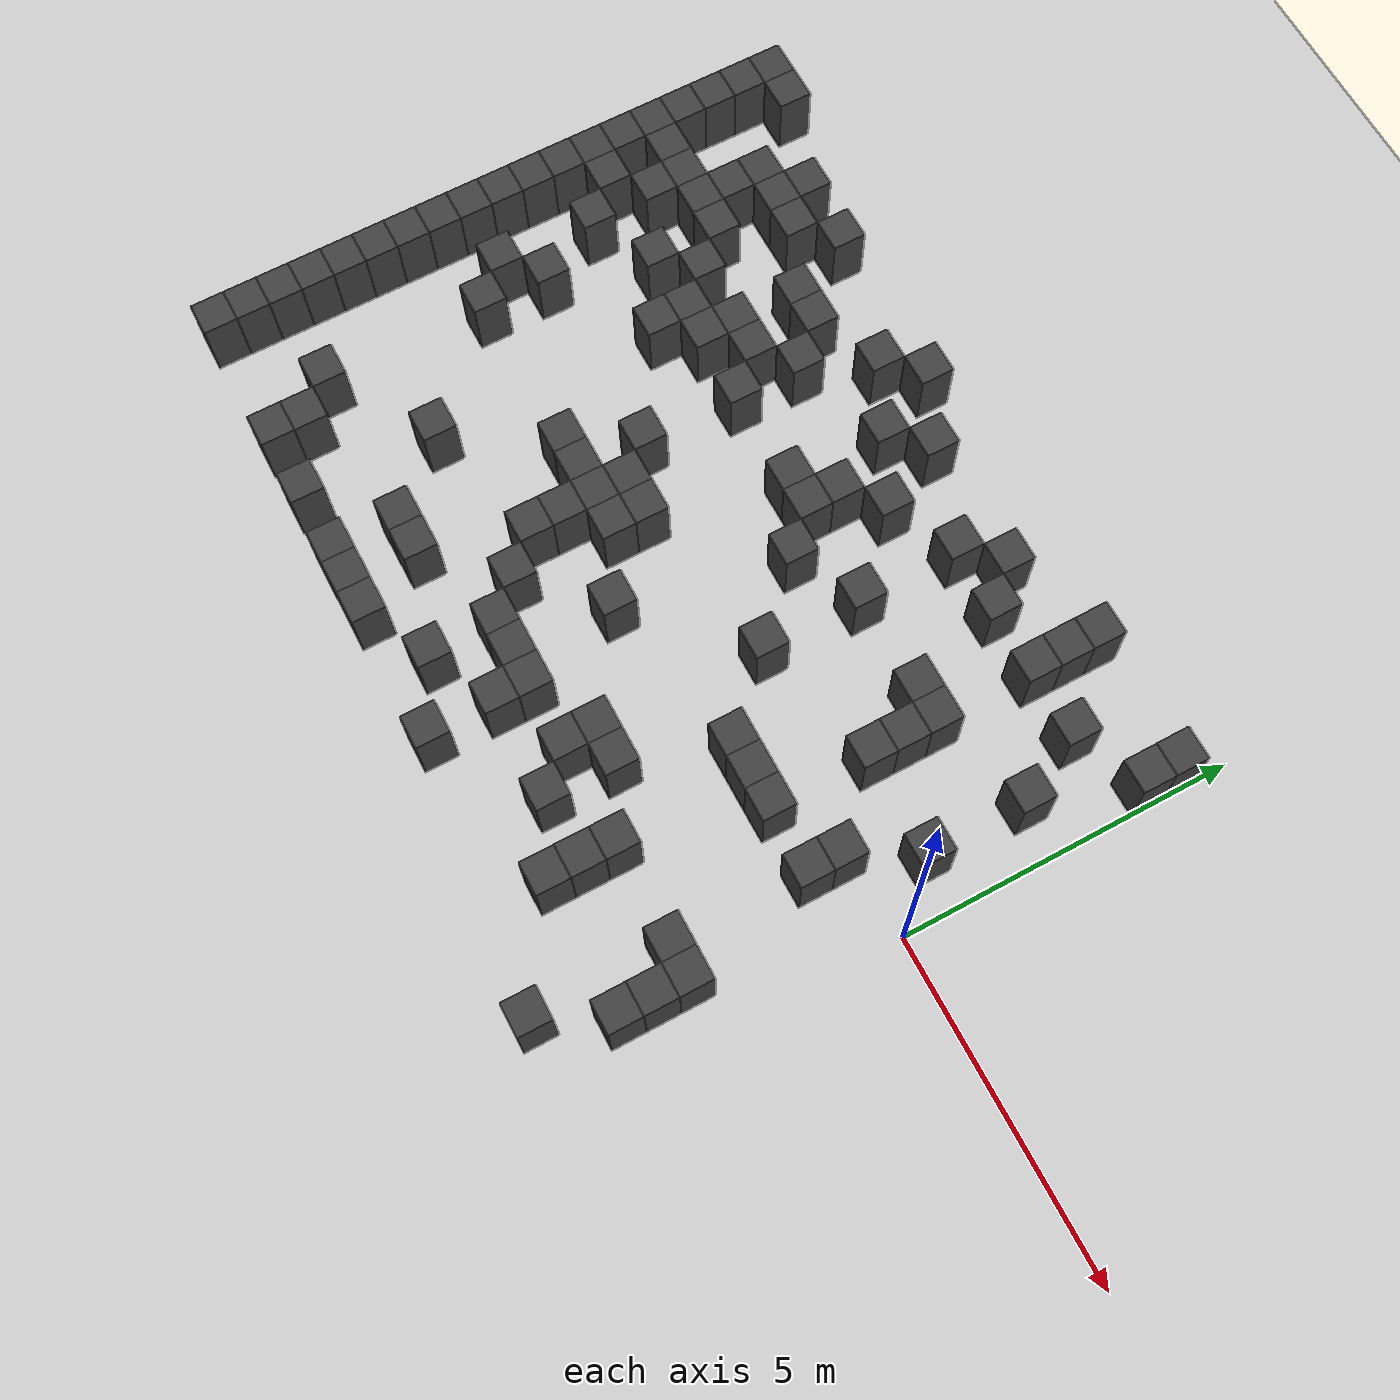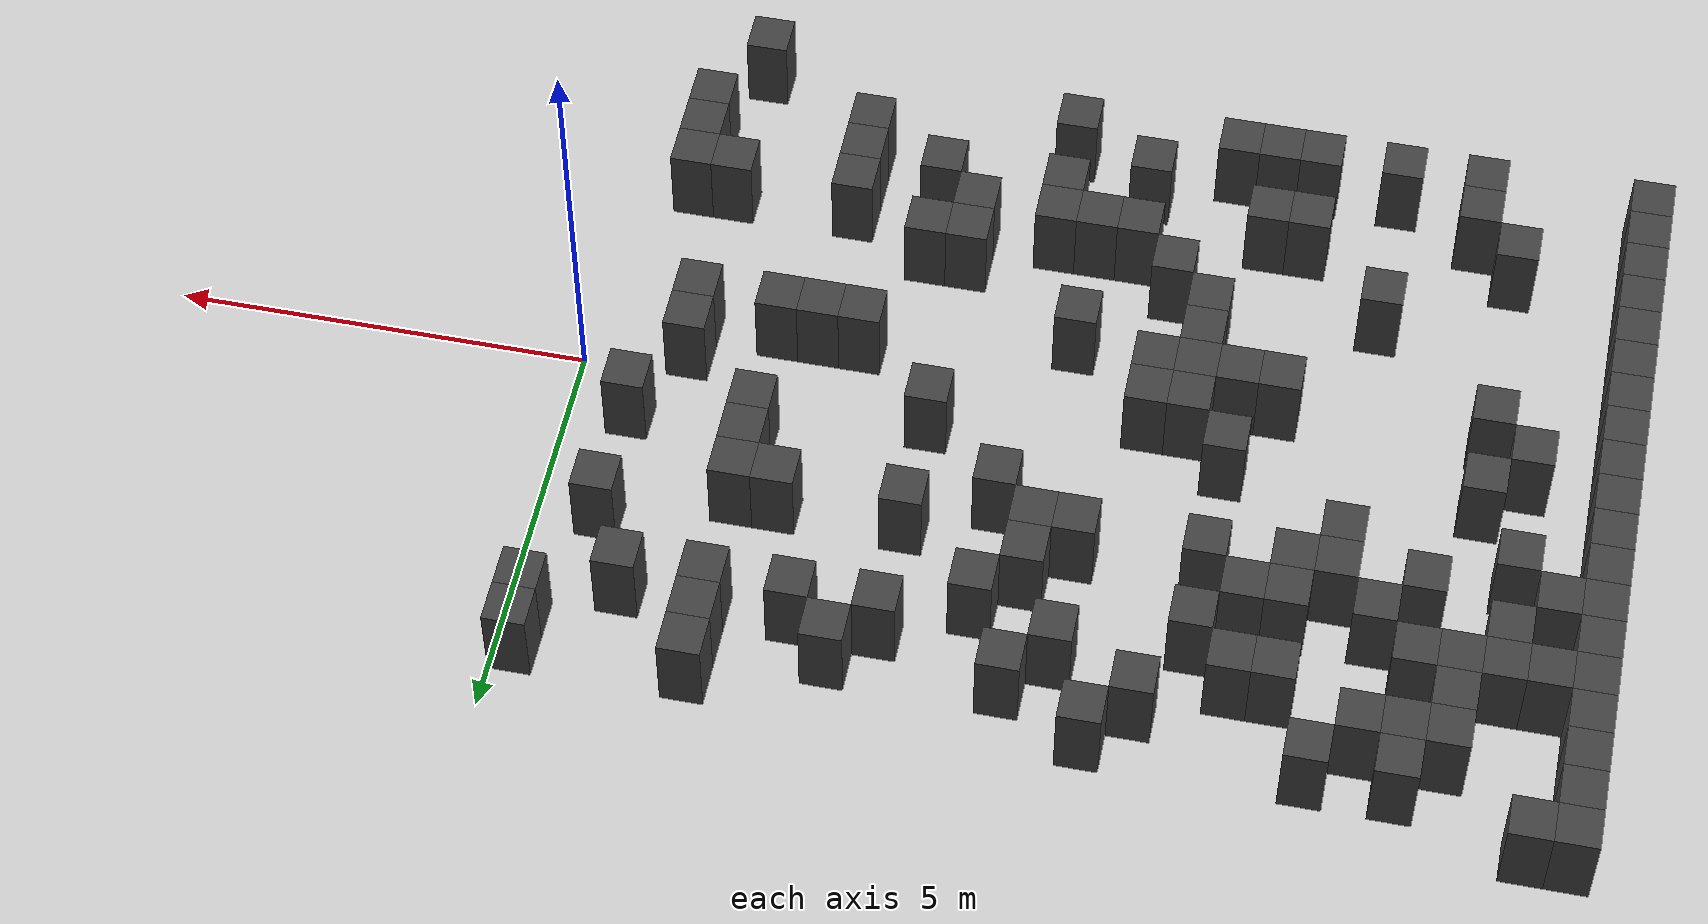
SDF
<sdf version="1.7">
 <world name="map_4557">
  <model name="ground_plane">
   <static>true</static>
   <link name="link">
    <collision name="collision">
     <geometry><plane><normal>0 0 1</normal><size>200 200</size></plane></geometry>
    </collision>
    <visual name="visual">
     <geometry><plane><normal>0 0 1</normal><size>200 200</size></plane></geometry>
     <material><ambient>0.8 0.8 0.8 1</ambient><diffuse>0.8 0.8 0.8 1</diffuse></material>
    </visual>
   </link>
  </model>
  <model name="maze_environment">
   <static>true</static>
   <link name="wall_228">
    <pose>-12.250 4.750 0.500 0 0 0</pose>
    <collision name="col"><geometry><box><size>0.5 0.5 1.0</size></box></geometry></collision>
    <visual name="vis">
     <geometry><box><size>0.5 0.5 1.0</size></box></geometry>
     <material><ambient>0.15 0.15 0.15 1</ambient><diffuse>0.25 0.25 0.25 1</diffuse></material>
    </visual>
   </link>
   <link name="wall_229">
    <pose>-11.750 4.750 0.500 0 0 0</pose>
    <collision name="col"><geometry><box><size>0.5 0.5 1.0</size></box></geometry></collision>
    <visual name="vis">
     <geometry><box><size>0.5 0.5 1.0</size></box></geometry>
     <material><ambient>0.15 0.15 0.15 1</ambient><diffuse>0.25 0.25 0.25 1</diffuse></material>
    </visual>
   </link>
   <link name="wall_243">
    <pose>-12.250 4.250 0.500 0 0 0</pose>
    <collision name="col"><geometry><box><size>0.5 0.5 1.0</size></box></geometry></collision>
    <visual name="vis">
     <geometry><box><size>0.5 0.5 1.0</size></box></geometry>
     <material><ambient>0.15 0.15 0.15 1</ambient><diffuse>0.25 0.25 0.25 1</diffuse></material>
    </visual>
   </link>
   <link name="wall_244">
    <pose>-10.250 4.250 0.500 0 0 0</pose>
    <collision name="col"><geometry><box><size>0.5 0.5 1.0</size></box></geometry></collision>
    <visual name="vis">
     <geometry><box><size>0.5 0.5 1.0</size></box></geometry>
     <material><ambient>0.15 0.15 0.15 1</ambient><diffuse>0.25 0.25 0.25 1</diffuse></material>
    </visual>
   </link>
   <link name="wall_245">
    <pose>-9.250 4.250 0.500 0 0 0</pose>
    <collision name="col"><geometry><box><size>0.5 0.5 1.0</size></box></geometry></collision>
    <visual name="vis">
     <geometry><box><size>0.5 0.5 1.0</size></box></geometry>
     <material><ambient>0.15 0.15 0.15 1</ambient><diffuse>0.25 0.25 0.25 1</diffuse></material>
    </visual>
   </link>
   <link name="wall_246">
    <pose>-6.750 4.250 0.500 0 0 0</pose>
    <collision name="col"><geometry><box><size>0.5 0.5 1.0</size></box></geometry></collision>
    <visual name="vis">
     <geometry><box><size>0.5 0.5 1.0</size></box></geometry>
     <material><ambient>0.15 0.15 0.15 1</ambient><diffuse>0.25 0.25 0.25 1</diffuse></material>
    </visual>
   </link>
   <link name="wall_247">
    <pose>-2.250 4.250 0.500 0 0 0</pose>
    <collision name="col"><geometry><box><size>0.5 0.5 1.0</size></box></geometry></collision>
    <visual name="vis">
     <geometry><box><size>0.5 0.5 1.0</size></box></geometry>
     <material><ambient>0.15 0.15 0.15 1</ambient><diffuse>0.25 0.25 0.25 1</diffuse></material>
    </visual>
   </link>
   <link name="wall_248">
    <pose>-0.250 4.250 0.500 0 0 0</pose>
    <collision name="col"><geometry><box><size>0.5 0.5 1.0</size></box></geometry></collision>
    <visual name="vis">
     <geometry><box><size>0.5 0.5 1.0</size></box></geometry>
     <material><ambient>0.15 0.15 0.15 1</ambient><diffuse>0.25 0.25 0.25 1</diffuse></material>
    </visual>
   </link>
   <link name="wall_256">
    <pose>-12.250 3.750 0.500 0 0 0</pose>
    <collision name="col"><geometry><box><size>0.5 0.5 1.0</size></box></geometry></collision>
    <visual name="vis">
     <geometry><box><size>0.5 0.5 1.0</size></box></geometry>
     <material><ambient>0.15 0.15 0.15 1</ambient><diffuse>0.25 0.25 0.25 1</diffuse></material>
    </visual>
   </link>
   <link name="wall_257">
    <pose>-10.750 3.750 0.500 0 0 0</pose>
    <collision name="col"><geometry><box><size>0.5 0.5 1.0</size></box></geometry></collision>
    <visual name="vis">
     <geometry><box><size>0.5 0.5 1.0</size></box></geometry>
     <material><ambient>0.15 0.15 0.15 1</ambient><diffuse>0.25 0.25 0.25 1</diffuse></material>
    </visual>
   </link>
   <link name="wall_258">
    <pose>-10.250 3.750 0.500 0 0 0</pose>
    <collision name="col"><geometry><box><size>0.5 0.5 1.0</size></box></geometry></collision>
    <visual name="vis">
     <geometry><box><size>0.5 0.5 1.0</size></box></geometry>
     <material><ambient>0.15 0.15 0.15 1</ambient><diffuse>0.25 0.25 0.25 1</diffuse></material>
    </visual>
   </link>
   <link name="wall_259">
    <pose>-9.750 3.750 0.500 0 0 0</pose>
    <collision name="col"><geometry><box><size>0.5 0.5 1.0</size></box></geometry></collision>
    <visual name="vis">
     <geometry><box><size>0.5 0.5 1.0</size></box></geometry>
     <material><ambient>0.15 0.15 0.15 1</ambient><diffuse>0.25 0.25 0.25 1</diffuse></material>
    </visual>
   </link>
   <link name="wall_260">
    <pose>-7.250 3.750 0.500 0 0 0</pose>
    <collision name="col"><geometry><box><size>0.5 0.5 1.0</size></box></geometry></collision>
    <visual name="vis">
     <geometry><box><size>0.5 0.5 1.0</size></box></geometry>
     <material><ambient>0.15 0.15 0.15 1</ambient><diffuse>0.25 0.25 0.25 1</diffuse></material>
    </visual>
   </link>
   <link name="wall_261">
    <pose>-5.750 3.750 0.500 0 0 0</pose>
    <collision name="col"><geometry><box><size>0.5 0.5 1.0</size></box></geometry></collision>
    <visual name="vis">
     <geometry><box><size>0.5 0.5 1.0</size></box></geometry>
     <material><ambient>0.15 0.15 0.15 1</ambient><diffuse>0.25 0.25 0.25 1</diffuse></material>
    </visual>
   </link>
   <link name="wall_262">
    <pose>-3.750 3.750 0.500 0 0 0</pose>
    <collision name="col"><geometry><box><size>0.5 0.5 1.0</size></box></geometry></collision>
    <visual name="vis">
     <geometry><box><size>0.5 0.5 1.0</size></box></geometry>
     <material><ambient>0.15 0.15 0.15 1</ambient><diffuse>0.25 0.25 0.25 1</diffuse></material>
    </visual>
   </link>
   <link name="wall_263">
    <pose>-2.250 3.750 0.500 0 0 0</pose>
    <collision name="col"><geometry><box><size>0.5 0.5 1.0</size></box></geometry></collision>
    <visual name="vis">
     <geometry><box><size>0.5 0.5 1.0</size></box></geometry>
     <material><ambient>0.15 0.15 0.15 1</ambient><diffuse>0.25 0.25 0.25 1</diffuse></material>
    </visual>
   </link>
   <link name="wall_264">
    <pose>-0.250 3.750 0.500 0 0 0</pose>
    <collision name="col"><geometry><box><size>0.5 0.5 1.0</size></box></geometry></collision>
    <visual name="vis">
     <geometry><box><size>0.5 0.5 1.0</size></box></geometry>
     <material><ambient>0.15 0.15 0.15 1</ambient><diffuse>0.25 0.25 0.25 1</diffuse></material>
    </visual>
   </link>
   <link name="wall_268">
    <pose>-12.250 3.250 0.500 0 0 0</pose>
    <collision name="col"><geometry><box><size>0.5 0.5 1.0</size></box></geometry></collision>
    <visual name="vis">
     <geometry><box><size>0.5 0.5 1.0</size></box></geometry>
     <material><ambient>0.15 0.15 0.15 1</ambient><diffuse>0.25 0.25 0.25 1</diffuse></material>
    </visual>
   </link>
   <link name="wall_269">
    <pose>-10.750 3.250 0.500 0 0 0</pose>
    <collision name="col"><geometry><box><size>0.5 0.5 1.0</size></box></geometry></collision>
    <visual name="vis">
     <geometry><box><size>0.5 0.5 1.0</size></box></geometry>
     <material><ambient>0.15 0.15 0.15 1</ambient><diffuse>0.25 0.25 0.25 1</diffuse></material>
    </visual>
   </link>
   <link name="wall_270">
    <pose>-8.750 3.250 0.500 0 0 0</pose>
    <collision name="col"><geometry><box><size>0.5 0.5 1.0</size></box></geometry></collision>
    <visual name="vis">
     <geometry><box><size>0.5 0.5 1.0</size></box></geometry>
     <material><ambient>0.15 0.15 0.15 1</ambient><diffuse>0.25 0.25 0.25 1</diffuse></material>
    </visual>
   </link>
   <link name="wall_271">
    <pose>-8.250 3.250 0.500 0 0 0</pose>
    <collision name="col"><geometry><box><size>0.5 0.5 1.0</size></box></geometry></collision>
    <visual name="vis">
     <geometry><box><size>0.5 0.5 1.0</size></box></geometry>
     <material><ambient>0.15 0.15 0.15 1</ambient><diffuse>0.25 0.25 0.25 1</diffuse></material>
    </visual>
   </link>
   <link name="wall_272">
    <pose>-6.250 3.250 0.500 0 0 0</pose>
    <collision name="col"><geometry><box><size>0.5 0.5 1.0</size></box></geometry></collision>
    <visual name="vis">
     <geometry><box><size>0.5 0.5 1.0</size></box></geometry>
     <material><ambient>0.15 0.15 0.15 1</ambient><diffuse>0.25 0.25 0.25 1</diffuse></material>
    </visual>
   </link>
   <link name="wall_273">
    <pose>-4.250 3.250 0.500 0 0 0</pose>
    <collision name="col"><geometry><box><size>0.5 0.5 1.0</size></box></geometry></collision>
    <visual name="vis">
     <geometry><box><size>0.5 0.5 1.0</size></box></geometry>
     <material><ambient>0.15 0.15 0.15 1</ambient><diffuse>0.25 0.25 0.25 1</diffuse></material>
    </visual>
   </link>
   <link name="wall_274">
    <pose>-3.250 3.250 0.500 0 0 0</pose>
    <collision name="col"><geometry><box><size>0.5 0.5 1.0</size></box></geometry></collision>
    <visual name="vis">
     <geometry><box><size>0.5 0.5 1.0</size></box></geometry>
     <material><ambient>0.15 0.15 0.15 1</ambient><diffuse>0.25 0.25 0.25 1</diffuse></material>
    </visual>
   </link>
   <link name="wall_275">
    <pose>-2.250 3.250 0.500 0 0 0</pose>
    <collision name="col"><geometry><box><size>0.5 0.5 1.0</size></box></geometry></collision>
    <visual name="vis">
     <geometry><box><size>0.5 0.5 1.0</size></box></geometry>
     <material><ambient>0.15 0.15 0.15 1</ambient><diffuse>0.25 0.25 0.25 1</diffuse></material>
    </visual>
   </link>
   <link name="wall_276">
    <pose>-1.250 3.250 0.500 0 0 0</pose>
    <collision name="col"><geometry><box><size>0.5 0.5 1.0</size></box></geometry></collision>
    <visual name="vis">
     <geometry><box><size>0.5 0.5 1.0</size></box></geometry>
     <material><ambient>0.15 0.15 0.15 1</ambient><diffuse>0.25 0.25 0.25 1</diffuse></material>
    </visual>
   </link>
   <link name="wall_286">
    <pose>-12.250 2.750 0.500 0 0 0</pose>
    <collision name="col"><geometry><box><size>0.5 0.5 1.0</size></box></geometry></collision>
    <visual name="vis">
     <geometry><box><size>0.5 0.5 1.0</size></box></geometry>
     <material><ambient>0.15 0.15 0.15 1</ambient><diffuse>0.25 0.25 0.25 1</diffuse></material>
    </visual>
   </link>
   <link name="wall_287">
    <pose>-11.750 2.750 0.500 0 0 0</pose>
    <collision name="col"><geometry><box><size>0.5 0.5 1.0</size></box></geometry></collision>
    <visual name="vis">
     <geometry><box><size>0.5 0.5 1.0</size></box></geometry>
     <material><ambient>0.15 0.15 0.15 1</ambient><diffuse>0.25 0.25 0.25 1</diffuse></material>
    </visual>
   </link>
   <link name="wall_288">
    <pose>-11.250 2.750 0.500 0 0 0</pose>
    <collision name="col"><geometry><box><size>0.5 0.5 1.0</size></box></geometry></collision>
    <visual name="vis">
     <geometry><box><size>0.5 0.5 1.0</size></box></geometry>
     <material><ambient>0.15 0.15 0.15 1</ambient><diffuse>0.25 0.25 0.25 1</diffuse></material>
    </visual>
   </link>
   <link name="wall_289">
    <pose>-10.750 2.750 0.500 0 0 0</pose>
    <collision name="col"><geometry><box><size>0.5 0.5 1.0</size></box></geometry></collision>
    <visual name="vis">
     <geometry><box><size>0.5 0.5 1.0</size></box></geometry>
     <material><ambient>0.15 0.15 0.15 1</ambient><diffuse>0.25 0.25 0.25 1</diffuse></material>
    </visual>
   </link>
   <link name="wall_290">
    <pose>-10.250 2.750 0.500 0 0 0</pose>
    <collision name="col"><geometry><box><size>0.5 0.5 1.0</size></box></geometry></collision>
    <visual name="vis">
     <geometry><box><size>0.5 0.5 1.0</size></box></geometry>
     <material><ambient>0.15 0.15 0.15 1</ambient><diffuse>0.25 0.25 0.25 1</diffuse></material>
    </visual>
   </link>
   <link name="wall_291">
    <pose>-7.750 2.750 0.500 0 0 0</pose>
    <collision name="col"><geometry><box><size>0.5 0.5 1.0</size></box></geometry></collision>
    <visual name="vis">
     <geometry><box><size>0.5 0.5 1.0</size></box></geometry>
     <material><ambient>0.15 0.15 0.15 1</ambient><diffuse>0.25 0.25 0.25 1</diffuse></material>
    </visual>
   </link>
   <link name="wall_292">
    <pose>-5.250 2.750 0.500 0 0 0</pose>
    <collision name="col"><geometry><box><size>0.5 0.5 1.0</size></box></geometry></collision>
    <visual name="vis">
     <geometry><box><size>0.5 0.5 1.0</size></box></geometry>
     <material><ambient>0.15 0.15 0.15 1</ambient><diffuse>0.25 0.25 0.25 1</diffuse></material>
    </visual>
   </link>
   <link name="wall_299">
    <pose>-12.250 2.250 0.500 0 0 0</pose>
    <collision name="col"><geometry><box><size>0.5 0.5 1.0</size></box></geometry></collision>
    <visual name="vis">
     <geometry><box><size>0.5 0.5 1.0</size></box></geometry>
     <material><ambient>0.15 0.15 0.15 1</ambient><diffuse>0.25 0.25 0.25 1</diffuse></material>
    </visual>
   </link>
   <link name="wall_300">
    <pose>-11.250 2.250 0.500 0 0 0</pose>
    <collision name="col"><geometry><box><size>0.5 0.5 1.0</size></box></geometry></collision>
    <visual name="vis">
     <geometry><box><size>0.5 0.5 1.0</size></box></geometry>
     <material><ambient>0.15 0.15 0.15 1</ambient><diffuse>0.25 0.25 0.25 1</diffuse></material>
    </visual>
   </link>
   <link name="wall_301">
    <pose>-9.750 2.250 0.500 0 0 0</pose>
    <collision name="col"><geometry><box><size>0.5 0.5 1.0</size></box></geometry></collision>
    <visual name="vis">
     <geometry><box><size>0.5 0.5 1.0</size></box></geometry>
     <material><ambient>0.15 0.15 0.15 1</ambient><diffuse>0.25 0.25 0.25 1</diffuse></material>
    </visual>
   </link>
   <link name="wall_302">
    <pose>-8.750 2.250 0.500 0 0 0</pose>
    <collision name="col"><geometry><box><size>0.5 0.5 1.0</size></box></geometry></collision>
    <visual name="vis">
     <geometry><box><size>0.5 0.5 1.0</size></box></geometry>
     <material><ambient>0.15 0.15 0.15 1</ambient><diffuse>0.25 0.25 0.25 1</diffuse></material>
    </visual>
   </link>
   <link name="wall_303">
    <pose>-8.250 2.250 0.500 0 0 0</pose>
    <collision name="col"><geometry><box><size>0.5 0.5 1.0</size></box></geometry></collision>
    <visual name="vis">
     <geometry><box><size>0.5 0.5 1.0</size></box></geometry>
     <material><ambient>0.15 0.15 0.15 1</ambient><diffuse>0.25 0.25 0.25 1</diffuse></material>
    </visual>
   </link>
   <link name="wall_304">
    <pose>-5.750 2.250 0.500 0 0 0</pose>
    <collision name="col"><geometry><box><size>0.5 0.5 1.0</size></box></geometry></collision>
    <visual name="vis">
     <geometry><box><size>0.5 0.5 1.0</size></box></geometry>
     <material><ambient>0.15 0.15 0.15 1</ambient><diffuse>0.25 0.25 0.25 1</diffuse></material>
    </visual>
   </link>
   <link name="wall_305">
    <pose>-0.750 2.250 0.500 0 0 0</pose>
    <collision name="col"><geometry><box><size>0.5 0.5 1.0</size></box></geometry></collision>
    <visual name="vis">
     <geometry><box><size>0.5 0.5 1.0</size></box></geometry>
     <material><ambient>0.15 0.15 0.15 1</ambient><diffuse>0.25 0.25 0.25 1</diffuse></material>
    </visual>
   </link>
   <link name="wall_313">
    <pose>-12.250 1.750 0.500 0 0 0</pose>
    <collision name="col"><geometry><box><size>0.5 0.5 1.0</size></box></geometry></collision>
    <visual name="vis">
     <geometry><box><size>0.5 0.5 1.0</size></box></geometry>
     <material><ambient>0.15 0.15 0.15 1</ambient><diffuse>0.25 0.25 0.25 1</diffuse></material>
    </visual>
   </link>
   <link name="wall_314">
    <pose>-11.750 1.750 0.500 0 0 0</pose>
    <collision name="col"><geometry><box><size>0.5 0.5 1.0</size></box></geometry></collision>
    <visual name="vis">
     <geometry><box><size>0.5 0.5 1.0</size></box></geometry>
     <material><ambient>0.15 0.15 0.15 1</ambient><diffuse>0.25 0.25 0.25 1</diffuse></material>
    </visual>
   </link>
   <link name="wall_315">
    <pose>-10.250 1.750 0.500 0 0 0</pose>
    <collision name="col"><geometry><box><size>0.5 0.5 1.0</size></box></geometry></collision>
    <visual name="vis">
     <geometry><box><size>0.5 0.5 1.0</size></box></geometry>
     <material><ambient>0.15 0.15 0.15 1</ambient><diffuse>0.25 0.25 0.25 1</diffuse></material>
    </visual>
   </link>
   <link name="wall_316">
    <pose>-9.250 1.750 0.500 0 0 0</pose>
    <collision name="col"><geometry><box><size>0.5 0.5 1.0</size></box></geometry></collision>
    <visual name="vis">
     <geometry><box><size>0.5 0.5 1.0</size></box></geometry>
     <material><ambient>0.15 0.15 0.15 1</ambient><diffuse>0.25 0.25 0.25 1</diffuse></material>
    </visual>
   </link>
   <link name="wall_317">
    <pose>-8.750 1.750 0.500 0 0 0</pose>
    <collision name="col"><geometry><box><size>0.5 0.5 1.0</size></box></geometry></collision>
    <visual name="vis">
     <geometry><box><size>0.5 0.5 1.0</size></box></geometry>
     <material><ambient>0.15 0.15 0.15 1</ambient><diffuse>0.25 0.25 0.25 1</diffuse></material>
    </visual>
   </link>
   <link name="wall_318">
    <pose>-7.750 1.750 0.500 0 0 0</pose>
    <collision name="col"><geometry><box><size>0.5 0.5 1.0</size></box></geometry></collision>
    <visual name="vis">
     <geometry><box><size>0.5 0.5 1.0</size></box></geometry>
     <material><ambient>0.15 0.15 0.15 1</ambient><diffuse>0.25 0.25 0.25 1</diffuse></material>
    </visual>
   </link>
   <link name="wall_319">
    <pose>-6.250 1.750 0.500 0 0 0</pose>
    <collision name="col"><geometry><box><size>0.5 0.5 1.0</size></box></geometry></collision>
    <visual name="vis">
     <geometry><box><size>0.5 0.5 1.0</size></box></geometry>
     <material><ambient>0.15 0.15 0.15 1</ambient><diffuse>0.25 0.25 0.25 1</diffuse></material>
    </visual>
   </link>
   <link name="wall_320">
    <pose>-5.750 1.750 0.500 0 0 0</pose>
    <collision name="col"><geometry><box><size>0.5 0.5 1.0</size></box></geometry></collision>
    <visual name="vis">
     <geometry><box><size>0.5 0.5 1.0</size></box></geometry>
     <material><ambient>0.15 0.15 0.15 1</ambient><diffuse>0.25 0.25 0.25 1</diffuse></material>
    </visual>
   </link>
   <link name="wall_321">
    <pose>-4.250 1.750 0.500 0 0 0</pose>
    <collision name="col"><geometry><box><size>0.5 0.5 1.0</size></box></geometry></collision>
    <visual name="vis">
     <geometry><box><size>0.5 0.5 1.0</size></box></geometry>
     <material><ambient>0.15 0.15 0.15 1</ambient><diffuse>0.25 0.25 0.25 1</diffuse></material>
    </visual>
   </link>
   <link name="wall_322">
    <pose>-2.750 1.750 0.500 0 0 0</pose>
    <collision name="col"><geometry><box><size>0.5 0.5 1.0</size></box></geometry></collision>
    <visual name="vis">
     <geometry><box><size>0.5 0.5 1.0</size></box></geometry>
     <material><ambient>0.15 0.15 0.15 1</ambient><diffuse>0.25 0.25 0.25 1</diffuse></material>
    </visual>
   </link>
   <link name="wall_323">
    <pose>-2.250 1.750 0.500 0 0 0</pose>
    <collision name="col"><geometry><box><size>0.5 0.5 1.0</size></box></geometry></collision>
    <visual name="vis">
     <geometry><box><size>0.5 0.5 1.0</size></box></geometry>
     <material><ambient>0.15 0.15 0.15 1</ambient><diffuse>0.25 0.25 0.25 1</diffuse></material>
    </visual>
   </link>
   <link name="wall_335">
    <pose>-12.250 1.250 0.500 0 0 0</pose>
    <collision name="col"><geometry><box><size>0.5 0.5 1.0</size></box></geometry></collision>
    <visual name="vis">
     <geometry><box><size>0.5 0.5 1.0</size></box></geometry>
     <material><ambient>0.15 0.15 0.15 1</ambient><diffuse>0.25 0.25 0.25 1</diffuse></material>
    </visual>
   </link>
   <link name="wall_336">
    <pose>-11.250 1.250 0.500 0 0 0</pose>
    <collision name="col"><geometry><box><size>0.5 0.5 1.0</size></box></geometry></collision>
    <visual name="vis">
     <geometry><box><size>0.5 0.5 1.0</size></box></geometry>
     <material><ambient>0.15 0.15 0.15 1</ambient><diffuse>0.25 0.25 0.25 1</diffuse></material>
    </visual>
   </link>
   <link name="wall_337">
    <pose>-9.250 1.250 0.500 0 0 0</pose>
    <collision name="col"><geometry><box><size>0.5 0.5 1.0</size></box></geometry></collision>
    <visual name="vis">
     <geometry><box><size>0.5 0.5 1.0</size></box></geometry>
     <material><ambient>0.15 0.15 0.15 1</ambient><diffuse>0.25 0.25 0.25 1</diffuse></material>
    </visual>
   </link>
   <link name="wall_338">
    <pose>-5.250 1.250 0.500 0 0 0</pose>
    <collision name="col"><geometry><box><size>0.5 0.5 1.0</size></box></geometry></collision>
    <visual name="vis">
     <geometry><box><size>0.5 0.5 1.0</size></box></geometry>
     <material><ambient>0.15 0.15 0.15 1</ambient><diffuse>0.25 0.25 0.25 1</diffuse></material>
    </visual>
   </link>
   <link name="wall_339">
    <pose>-2.250 1.250 0.500 0 0 0</pose>
    <collision name="col"><geometry><box><size>0.5 0.5 1.0</size></box></geometry></collision>
    <visual name="vis">
     <geometry><box><size>0.5 0.5 1.0</size></box></geometry>
     <material><ambient>0.15 0.15 0.15 1</ambient><diffuse>0.25 0.25 0.25 1</diffuse></material>
    </visual>
   </link>
   <link name="wall_343">
    <pose>-12.250 0.750 0.500 0 0 0</pose>
    <collision name="col"><geometry><box><size>0.5 0.5 1.0</size></box></geometry></collision>
    <visual name="vis">
     <geometry><box><size>0.5 0.5 1.0</size></box></geometry>
     <material><ambient>0.15 0.15 0.15 1</ambient><diffuse>0.25 0.25 0.25 1</diffuse></material>
    </visual>
   </link>
   <link name="wall_344">
    <pose>-2.250 0.750 0.500 0 0 0</pose>
    <collision name="col"><geometry><box><size>0.5 0.5 1.0</size></box></geometry></collision>
    <visual name="vis">
     <geometry><box><size>0.5 0.5 1.0</size></box></geometry>
     <material><ambient>0.15 0.15 0.15 1</ambient><diffuse>0.25 0.25 0.25 1</diffuse></material>
    </visual>
   </link>
   <link name="wall_345">
    <pose>-0.750 0.750 0.500 0 0 0</pose>
    <collision name="col"><geometry><box><size>0.5 0.5 1.0</size></box></geometry></collision>
    <visual name="vis">
     <geometry><box><size>0.5 0.5 1.0</size></box></geometry>
     <material><ambient>0.15 0.15 0.15 1</ambient><diffuse>0.25 0.25 0.25 1</diffuse></material>
    </visual>
   </link>
   <link name="wall_355">
    <pose>-12.250 0.250 0.500 0 0 0</pose>
    <collision name="col"><geometry><box><size>0.5 0.5 1.0</size></box></geometry></collision>
    <visual name="vis">
     <geometry><box><size>0.5 0.5 1.0</size></box></geometry>
     <material><ambient>0.15 0.15 0.15 1</ambient><diffuse>0.25 0.25 0.25 1</diffuse></material>
    </visual>
   </link>
   <link name="wall_356">
    <pose>-10.750 0.250 0.500 0 0 0</pose>
    <collision name="col"><geometry><box><size>0.5 0.5 1.0</size></box></geometry></collision>
    <visual name="vis">
     <geometry><box><size>0.5 0.5 1.0</size></box></geometry>
     <material><ambient>0.15 0.15 0.15 1</ambient><diffuse>0.25 0.25 0.25 1</diffuse></material>
    </visual>
   </link>
   <link name="wall_357">
    <pose>-7.750 0.250 0.500 0 0 0</pose>
    <collision name="col"><geometry><box><size>0.5 0.5 1.0</size></box></geometry></collision>
    <visual name="vis">
     <geometry><box><size>0.5 0.5 1.0</size></box></geometry>
     <material><ambient>0.15 0.15 0.15 1</ambient><diffuse>0.25 0.25 0.25 1</diffuse></material>
    </visual>
   </link>
   <link name="wall_358">
    <pose>-4.250 0.250 0.500 0 0 0</pose>
    <collision name="col"><geometry><box><size>0.5 0.5 1.0</size></box></geometry></collision>
    <visual name="vis">
     <geometry><box><size>0.5 0.5 1.0</size></box></geometry>
     <material><ambient>0.15 0.15 0.15 1</ambient><diffuse>0.25 0.25 0.25 1</diffuse></material>
    </visual>
   </link>
   <link name="wall_363">
    <pose>-12.250 -0.250 0.500 0 0 0</pose>
    <collision name="col"><geometry><box><size>0.5 0.5 1.0</size></box></geometry></collision>
    <visual name="vis">
     <geometry><box><size>0.5 0.5 1.0</size></box></geometry>
     <material><ambient>0.15 0.15 0.15 1</ambient><diffuse>0.25 0.25 0.25 1</diffuse></material>
    </visual>
   </link>
   <link name="wall_364">
    <pose>-11.250 -0.250 0.500 0 0 0</pose>
    <collision name="col"><geometry><box><size>0.5 0.5 1.0</size></box></geometry></collision>
    <visual name="vis">
     <geometry><box><size>0.5 0.5 1.0</size></box></geometry>
     <material><ambient>0.15 0.15 0.15 1</ambient><diffuse>0.25 0.25 0.25 1</diffuse></material>
    </visual>
   </link>
   <link name="wall_365">
    <pose>-7.250 -0.250 0.500 0 0 0</pose>
    <collision name="col"><geometry><box><size>0.5 0.5 1.0</size></box></geometry></collision>
    <visual name="vis">
     <geometry><box><size>0.5 0.5 1.0</size></box></geometry>
     <material><ambient>0.15 0.15 0.15 1</ambient><diffuse>0.25 0.25 0.25 1</diffuse></material>
    </visual>
   </link>
   <link name="wall_366">
    <pose>-6.750 -0.250 0.500 0 0 0</pose>
    <collision name="col"><geometry><box><size>0.5 0.5 1.0</size></box></geometry></collision>
    <visual name="vis">
     <geometry><box><size>0.5 0.5 1.0</size></box></geometry>
     <material><ambient>0.15 0.15 0.15 1</ambient><diffuse>0.25 0.25 0.25 1</diffuse></material>
    </visual>
   </link>
   <link name="wall_367">
    <pose>-1.250 -0.250 0.500 0 0 0</pose>
    <collision name="col"><geometry><box><size>0.5 0.5 1.0</size></box></geometry></collision>
    <visual name="vis">
     <geometry><box><size>0.5 0.5 1.0</size></box></geometry>
     <material><ambient>0.15 0.15 0.15 1</ambient><diffuse>0.25 0.25 0.25 1</diffuse></material>
    </visual>
   </link>
   <link name="wall_374">
    <pose>-12.250 -0.750 0.500 0 0 0</pose>
    <collision name="col"><geometry><box><size>0.5 0.5 1.0</size></box></geometry></collision>
    <visual name="vis">
     <geometry><box><size>0.5 0.5 1.0</size></box></geometry>
     <material><ambient>0.15 0.15 0.15 1</ambient><diffuse>0.25 0.25 0.25 1</diffuse></material>
    </visual>
   </link>
   <link name="wall_375">
    <pose>-10.750 -0.750 0.500 0 0 0</pose>
    <collision name="col"><geometry><box><size>0.5 0.5 1.0</size></box></geometry></collision>
    <visual name="vis">
     <geometry><box><size>0.5 0.5 1.0</size></box></geometry>
     <material><ambient>0.15 0.15 0.15 1</ambient><diffuse>0.25 0.25 0.25 1</diffuse></material>
    </visual>
   </link>
   <link name="wall_376">
    <pose>-8.250 -0.750 0.500 0 0 0</pose>
    <collision name="col"><geometry><box><size>0.5 0.5 1.0</size></box></geometry></collision>
    <visual name="vis">
     <geometry><box><size>0.5 0.5 1.0</size></box></geometry>
     <material><ambient>0.15 0.15 0.15 1</ambient><diffuse>0.25 0.25 0.25 1</diffuse></material>
    </visual>
   </link>
   <link name="wall_377">
    <pose>-7.750 -0.750 0.500 0 0 0</pose>
    <collision name="col"><geometry><box><size>0.5 0.5 1.0</size></box></geometry></collision>
    <visual name="vis">
     <geometry><box><size>0.5 0.5 1.0</size></box></geometry>
     <material><ambient>0.15 0.15 0.15 1</ambient><diffuse>0.25 0.25 0.25 1</diffuse></material>
    </visual>
   </link>
   <link name="wall_378">
    <pose>-7.250 -0.750 0.500 0 0 0</pose>
    <collision name="col"><geometry><box><size>0.5 0.5 1.0</size></box></geometry></collision>
    <visual name="vis">
     <geometry><box><size>0.5 0.5 1.0</size></box></geometry>
     <material><ambient>0.15 0.15 0.15 1</ambient><diffuse>0.25 0.25 0.25 1</diffuse></material>
    </visual>
   </link>
   <link name="wall_379">
    <pose>-6.750 -0.750 0.500 0 0 0</pose>
    <collision name="col"><geometry><box><size>0.5 0.5 1.0</size></box></geometry></collision>
    <visual name="vis">
     <geometry><box><size>0.5 0.5 1.0</size></box></geometry>
     <material><ambient>0.15 0.15 0.15 1</ambient><diffuse>0.25 0.25 0.25 1</diffuse></material>
    </visual>
   </link>
   <link name="wall_380">
    <pose>-3.250 -0.750 0.500 0 0 0</pose>
    <collision name="col"><geometry><box><size>0.5 0.5 1.0</size></box></geometry></collision>
    <visual name="vis">
     <geometry><box><size>0.5 0.5 1.0</size></box></geometry>
     <material><ambient>0.15 0.15 0.15 1</ambient><diffuse>0.25 0.25 0.25 1</diffuse></material>
    </visual>
   </link>
   <link name="wall_381">
    <pose>-2.750 -0.750 0.500 0 0 0</pose>
    <collision name="col"><geometry><box><size>0.5 0.5 1.0</size></box></geometry></collision>
    <visual name="vis">
     <geometry><box><size>0.5 0.5 1.0</size></box></geometry>
     <material><ambient>0.15 0.15 0.15 1</ambient><diffuse>0.25 0.25 0.25 1</diffuse></material>
    </visual>
   </link>
   <link name="wall_382">
    <pose>-2.250 -0.750 0.500 0 0 0</pose>
    <collision name="col"><geometry><box><size>0.5 0.5 1.0</size></box></geometry></collision>
    <visual name="vis">
     <geometry><box><size>0.5 0.5 1.0</size></box></geometry>
     <material><ambient>0.15 0.15 0.15 1</ambient><diffuse>0.25 0.25 0.25 1</diffuse></material>
    </visual>
   </link>
   <link name="wall_383">
    <pose>-1.250 -0.750 0.500 0 0 0</pose>
    <collision name="col"><geometry><box><size>0.5 0.5 1.0</size></box></geometry></collision>
    <visual name="vis">
     <geometry><box><size>0.5 0.5 1.0</size></box></geometry>
     <material><ambient>0.15 0.15 0.15 1</ambient><diffuse>0.25 0.25 0.25 1</diffuse></material>
    </visual>
   </link>
   <link name="wall_391">
    <pose>-12.250 -1.250 0.500 0 0 0</pose>
    <collision name="col"><geometry><box><size>0.5 0.5 1.0</size></box></geometry></collision>
    <visual name="vis">
     <geometry><box><size>0.5 0.5 1.0</size></box></geometry>
     <material><ambient>0.15 0.15 0.15 1</ambient><diffuse>0.25 0.25 0.25 1</diffuse></material>
    </visual>
   </link>
   <link name="wall_392">
    <pose>-7.250 -1.250 0.500 0 0 0</pose>
    <collision name="col"><geometry><box><size>0.5 0.5 1.0</size></box></geometry></collision>
    <visual name="vis">
     <geometry><box><size>0.5 0.5 1.0</size></box></geometry>
     <material><ambient>0.15 0.15 0.15 1</ambient><diffuse>0.25 0.25 0.25 1</diffuse></material>
    </visual>
   </link>
   <link name="wall_393">
    <pose>-5.750 -1.250 0.500 0 0 0</pose>
    <collision name="col"><geometry><box><size>0.5 0.5 1.0</size></box></geometry></collision>
    <visual name="vis">
     <geometry><box><size>0.5 0.5 1.0</size></box></geometry>
     <material><ambient>0.15 0.15 0.15 1</ambient><diffuse>0.25 0.25 0.25 1</diffuse></material>
    </visual>
   </link>
   <link name="wall_398">
    <pose>-12.250 -1.750 0.500 0 0 0</pose>
    <collision name="col"><geometry><box><size>0.5 0.5 1.0</size></box></geometry></collision>
    <visual name="vis">
     <geometry><box><size>0.5 0.5 1.0</size></box></geometry>
     <material><ambient>0.15 0.15 0.15 1</ambient><diffuse>0.25 0.25 0.25 1</diffuse></material>
    </visual>
   </link>
   <link name="wall_399">
    <pose>-7.250 -1.750 0.500 0 0 0</pose>
    <collision name="col"><geometry><box><size>0.5 0.5 1.0</size></box></geometry></collision>
    <visual name="vis">
     <geometry><box><size>0.5 0.5 1.0</size></box></geometry>
     <material><ambient>0.15 0.15 0.15 1</ambient><diffuse>0.25 0.25 0.25 1</diffuse></material>
    </visual>
   </link>
   <link name="wall_404">
    <pose>-12.250 -2.250 0.500 0 0 0</pose>
    <collision name="col"><geometry><box><size>0.5 0.5 1.0</size></box></geometry></collision>
    <visual name="vis">
     <geometry><box><size>0.5 0.5 1.0</size></box></geometry>
     <material><ambient>0.15 0.15 0.15 1</ambient><diffuse>0.25 0.25 0.25 1</diffuse></material>
    </visual>
   </link>
   <link name="wall_405">
    <pose>-9.250 -2.250 0.500 0 0 0</pose>
    <collision name="col"><geometry><box><size>0.5 0.5 1.0</size></box></geometry></collision>
    <visual name="vis">
     <geometry><box><size>0.5 0.5 1.0</size></box></geometry>
     <material><ambient>0.15 0.15 0.15 1</ambient><diffuse>0.25 0.25 0.25 1</diffuse></material>
    </visual>
   </link>
   <link name="wall_406">
    <pose>-6.750 -2.250 0.500 0 0 0</pose>
    <collision name="col"><geometry><box><size>0.5 0.5 1.0</size></box></geometry></collision>
    <visual name="vis">
     <geometry><box><size>0.5 0.5 1.0</size></box></geometry>
     <material><ambient>0.15 0.15 0.15 1</ambient><diffuse>0.25 0.25 0.25 1</diffuse></material>
    </visual>
   </link>
   <link name="wall_407">
    <pose>-4.250 -2.250 0.500 0 0 0</pose>
    <collision name="col"><geometry><box><size>0.5 0.5 1.0</size></box></geometry></collision>
    <visual name="vis">
     <geometry><box><size>0.5 0.5 1.0</size></box></geometry>
     <material><ambient>0.15 0.15 0.15 1</ambient><diffuse>0.25 0.25 0.25 1</diffuse></material>
    </visual>
   </link>
   <link name="wall_408">
    <pose>-3.750 -2.250 0.500 0 0 0</pose>
    <collision name="col"><geometry><box><size>0.5 0.5 1.0</size></box></geometry></collision>
    <visual name="vis">
     <geometry><box><size>0.5 0.5 1.0</size></box></geometry>
     <material><ambient>0.15 0.15 0.15 1</ambient><diffuse>0.25 0.25 0.25 1</diffuse></material>
    </visual>
   </link>
   <link name="wall_413">
    <pose>-12.250 -2.750 0.500 0 0 0</pose>
    <collision name="col"><geometry><box><size>0.5 0.5 1.0</size></box></geometry></collision>
    <visual name="vis">
     <geometry><box><size>0.5 0.5 1.0</size></box></geometry>
     <material><ambient>0.15 0.15 0.15 1</ambient><diffuse>0.25 0.25 0.25 1</diffuse></material>
    </visual>
   </link>
   <link name="wall_414">
    <pose>-6.250 -2.750 0.500 0 0 0</pose>
    <collision name="col"><geometry><box><size>0.5 0.5 1.0</size></box></geometry></collision>
    <visual name="vis">
     <geometry><box><size>0.5 0.5 1.0</size></box></geometry>
     <material><ambient>0.15 0.15 0.15 1</ambient><diffuse>0.25 0.25 0.25 1</diffuse></material>
    </visual>
   </link>
   <link name="wall_415">
    <pose>-5.750 -2.750 0.500 0 0 0</pose>
    <collision name="col"><geometry><box><size>0.5 0.5 1.0</size></box></geometry></collision>
    <visual name="vis">
     <geometry><box><size>0.5 0.5 1.0</size></box></geometry>
     <material><ambient>0.15 0.15 0.15 1</ambient><diffuse>0.25 0.25 0.25 1</diffuse></material>
    </visual>
   </link>
   <link name="wall_416">
    <pose>-5.250 -2.750 0.500 0 0 0</pose>
    <collision name="col"><geometry><box><size>0.5 0.5 1.0</size></box></geometry></collision>
    <visual name="vis">
     <geometry><box><size>0.5 0.5 1.0</size></box></geometry>
     <material><ambient>0.15 0.15 0.15 1</ambient><diffuse>0.25 0.25 0.25 1</diffuse></material>
    </visual>
   </link>
   <link name="wall_417">
    <pose>-4.250 -2.750 0.500 0 0 0</pose>
    <collision name="col"><geometry><box><size>0.5 0.5 1.0</size></box></geometry></collision>
    <visual name="vis">
     <geometry><box><size>0.5 0.5 1.0</size></box></geometry>
     <material><ambient>0.15 0.15 0.15 1</ambient><diffuse>0.25 0.25 0.25 1</diffuse></material>
    </visual>
   </link>
   <link name="wall_418">
    <pose>-2.750 -2.750 0.500 0 0 0</pose>
    <collision name="col"><geometry><box><size>0.5 0.5 1.0</size></box></geometry></collision>
    <visual name="vis">
     <geometry><box><size>0.5 0.5 1.0</size></box></geometry>
     <material><ambient>0.15 0.15 0.15 1</ambient><diffuse>0.25 0.25 0.25 1</diffuse></material>
    </visual>
   </link>
   <link name="wall_419">
    <pose>-1.250 -2.750 0.500 0 0 0</pose>
    <collision name="col"><geometry><box><size>0.5 0.5 1.0</size></box></geometry></collision>
    <visual name="vis">
     <geometry><box><size>0.5 0.5 1.0</size></box></geometry>
     <material><ambient>0.15 0.15 0.15 1</ambient><diffuse>0.25 0.25 0.25 1</diffuse></material>
    </visual>
   </link>
   <link name="wall_420">
    <pose>-0.750 -2.750 0.500 0 0 0</pose>
    <collision name="col"><geometry><box><size>0.5 0.5 1.0</size></box></geometry></collision>
    <visual name="vis">
     <geometry><box><size>0.5 0.5 1.0</size></box></geometry>
     <material><ambient>0.15 0.15 0.15 1</ambient><diffuse>0.25 0.25 0.25 1</diffuse></material>
    </visual>
   </link>
   <link name="wall_428">
    <pose>-12.250 -3.250 0.500 0 0 0</pose>
    <collision name="col"><geometry><box><size>0.5 0.5 1.0</size></box></geometry></collision>
    <visual name="vis">
     <geometry><box><size>0.5 0.5 1.0</size></box></geometry>
     <material><ambient>0.15 0.15 0.15 1</ambient><diffuse>0.25 0.25 0.25 1</diffuse></material>
    </visual>
   </link>
   <link name="wall_429">
    <pose>-10.750 -3.250 0.500 0 0 0</pose>
    <collision name="col"><geometry><box><size>0.5 0.5 1.0</size></box></geometry></collision>
    <visual name="vis">
     <geometry><box><size>0.5 0.5 1.0</size></box></geometry>
     <material><ambient>0.15 0.15 0.15 1</ambient><diffuse>0.25 0.25 0.25 1</diffuse></material>
    </visual>
   </link>
   <link name="wall_430">
    <pose>-8.250 -3.250 0.500 0 0 0</pose>
    <collision name="col"><geometry><box><size>0.5 0.5 1.0</size></box></geometry></collision>
    <visual name="vis">
     <geometry><box><size>0.5 0.5 1.0</size></box></geometry>
     <material><ambient>0.15 0.15 0.15 1</ambient><diffuse>0.25 0.25 0.25 1</diffuse></material>
    </visual>
   </link>
   <link name="wall_431">
    <pose>-7.750 -3.250 0.500 0 0 0</pose>
    <collision name="col"><geometry><box><size>0.5 0.5 1.0</size></box></geometry></collision>
    <visual name="vis">
     <geometry><box><size>0.5 0.5 1.0</size></box></geometry>
     <material><ambient>0.15 0.15 0.15 1</ambient><diffuse>0.25 0.25 0.25 1</diffuse></material>
    </visual>
   </link>
   <link name="wall_432">
    <pose>-5.250 -3.250 0.500 0 0 0</pose>
    <collision name="col"><geometry><box><size>0.5 0.5 1.0</size></box></geometry></collision>
    <visual name="vis">
     <geometry><box><size>0.5 0.5 1.0</size></box></geometry>
     <material><ambient>0.15 0.15 0.15 1</ambient><diffuse>0.25 0.25 0.25 1</diffuse></material>
    </visual>
   </link>
   <link name="wall_433">
    <pose>-3.750 -3.250 0.500 0 0 0</pose>
    <collision name="col"><geometry><box><size>0.5 0.5 1.0</size></box></geometry></collision>
    <visual name="vis">
     <geometry><box><size>0.5 0.5 1.0</size></box></geometry>
     <material><ambient>0.15 0.15 0.15 1</ambient><diffuse>0.25 0.25 0.25 1</diffuse></material>
    </visual>
   </link>
   <link name="wall_434">
    <pose>-2.750 -3.250 0.500 0 0 0</pose>
    <collision name="col"><geometry><box><size>0.5 0.5 1.0</size></box></geometry></collision>
    <visual name="vis">
     <geometry><box><size>0.5 0.5 1.0</size></box></geometry>
     <material><ambient>0.15 0.15 0.15 1</ambient><diffuse>0.25 0.25 0.25 1</diffuse></material>
    </visual>
   </link>
   <link name="wall_435">
    <pose>-0.750 -3.250 0.500 0 0 0</pose>
    <collision name="col"><geometry><box><size>0.5 0.5 1.0</size></box></geometry></collision>
    <visual name="vis">
     <geometry><box><size>0.5 0.5 1.0</size></box></geometry>
     <material><ambient>0.15 0.15 0.15 1</ambient><diffuse>0.25 0.25 0.25 1</diffuse></material>
    </visual>
   </link>
   <link name="wall_441">
    <pose>-12.250 -3.750 0.500 0 0 0</pose>
    <collision name="col"><geometry><box><size>0.5 0.5 1.0</size></box></geometry></collision>
    <visual name="vis">
     <geometry><box><size>0.5 0.5 1.0</size></box></geometry>
     <material><ambient>0.15 0.15 0.15 1</ambient><diffuse>0.25 0.25 0.25 1</diffuse></material>
    </visual>
   </link>
   <link name="wall_442">
    <pose>-10.250 -3.750 0.500 0 0 0</pose>
    <collision name="col"><geometry><box><size>0.5 0.5 1.0</size></box></geometry></collision>
    <visual name="vis">
     <geometry><box><size>0.5 0.5 1.0</size></box></geometry>
     <material><ambient>0.15 0.15 0.15 1</ambient><diffuse>0.25 0.25 0.25 1</diffuse></material>
    </visual>
   </link>
   <link name="wall_443">
    <pose>-6.250 -3.750 0.500 0 0 0</pose>
    <collision name="col"><geometry><box><size>0.5 0.5 1.0</size></box></geometry></collision>
    <visual name="vis">
     <geometry><box><size>0.5 0.5 1.0</size></box></geometry>
     <material><ambient>0.15 0.15 0.15 1</ambient><diffuse>0.25 0.25 0.25 1</diffuse></material>
    </visual>
   </link>
   <link name="wall_444">
    <pose>-2.750 -3.750 0.500 0 0 0</pose>
    <collision name="col"><geometry><box><size>0.5 0.5 1.0</size></box></geometry></collision>
    <visual name="vis">
     <geometry><box><size>0.5 0.5 1.0</size></box></geometry>
     <material><ambient>0.15 0.15 0.15 1</ambient><diffuse>0.25 0.25 0.25 1</diffuse></material>
    </visual>
   </link>
   <link name="wall_445">
    <pose>-0.750 -3.750 0.500 0 0 0</pose>
    <collision name="col"><geometry><box><size>0.5 0.5 1.0</size></box></geometry></collision>
    <visual name="vis">
     <geometry><box><size>0.5 0.5 1.0</size></box></geometry>
     <material><ambient>0.15 0.15 0.15 1</ambient><diffuse>0.25 0.25 0.25 1</diffuse></material>
    </visual>
   </link>
   <link name="wall_450">
    <pose>-12.250 -4.250 0.500 0 0 0</pose>
    <collision name="col"><geometry><box><size>0.5 0.5 1.0</size></box></geometry></collision>
    <visual name="vis">
     <geometry><box><size>0.5 0.5 1.0</size></box></geometry>
     <material><ambient>0.15 0.15 0.15 1</ambient><diffuse>0.25 0.25 0.25 1</diffuse></material>
    </visual>
   </link>
   <link name="wall_451">
    <pose>-10.250 -4.250 0.500 0 0 0</pose>
    <collision name="col"><geometry><box><size>0.5 0.5 1.0</size></box></geometry></collision>
    <visual name="vis">
     <geometry><box><size>0.5 0.5 1.0</size></box></geometry>
     <material><ambient>0.15 0.15 0.15 1</ambient><diffuse>0.25 0.25 0.25 1</diffuse></material>
    </visual>
   </link>
   <link name="wall_452">
    <pose>-9.250 -4.250 0.500 0 0 0</pose>
    <collision name="col"><geometry><box><size>0.5 0.5 1.0</size></box></geometry></collision>
    <visual name="vis">
     <geometry><box><size>0.5 0.5 1.0</size></box></geometry>
     <material><ambient>0.15 0.15 0.15 1</ambient><diffuse>0.25 0.25 0.25 1</diffuse></material>
    </visual>
   </link>
   <link name="wall_453">
    <pose>-8.250 -4.250 0.500 0 0 0</pose>
    <collision name="col"><geometry><box><size>0.5 0.5 1.0</size></box></geometry></collision>
    <visual name="vis">
     <geometry><box><size>0.5 0.5 1.0</size></box></geometry>
     <material><ambient>0.15 0.15 0.15 1</ambient><diffuse>0.25 0.25 0.25 1</diffuse></material>
    </visual>
   </link>
   <link name="wall_454">
    <pose>-7.750 -4.250 0.500 0 0 0</pose>
    <collision name="col"><geometry><box><size>0.5 0.5 1.0</size></box></geometry></collision>
    <visual name="vis">
     <geometry><box><size>0.5 0.5 1.0</size></box></geometry>
     <material><ambient>0.15 0.15 0.15 1</ambient><diffuse>0.25 0.25 0.25 1</diffuse></material>
    </visual>
   </link>
   <link name="wall_455">
    <pose>-7.250 -4.250 0.500 0 0 0</pose>
    <collision name="col"><geometry><box><size>0.5 0.5 1.0</size></box></geometry></collision>
    <visual name="vis">
     <geometry><box><size>0.5 0.5 1.0</size></box></geometry>
     <material><ambient>0.15 0.15 0.15 1</ambient><diffuse>0.25 0.25 0.25 1</diffuse></material>
    </visual>
   </link>
   <link name="wall_456">
    <pose>-5.250 -4.250 0.500 0 0 0</pose>
    <collision name="col"><geometry><box><size>0.5 0.5 1.0</size></box></geometry></collision>
    <visual name="vis">
     <geometry><box><size>0.5 0.5 1.0</size></box></geometry>
     <material><ambient>0.15 0.15 0.15 1</ambient><diffuse>0.25 0.25 0.25 1</diffuse></material>
    </visual>
   </link>
   <link name="wall_469">
    <pose>-1.250 -4.750 0.500 0 0 0</pose>
    <collision name="col"><geometry><box><size>0.5 0.5 1.0</size></box></geometry></collision>
    <visual name="vis">
     <geometry><box><size>0.5 0.5 1.0</size></box></geometry>
     <material><ambient>0.15 0.15 0.15 1</ambient><diffuse>0.25 0.25 0.25 1</diffuse></material>
    </visual>
   </link>
  </model>
 </world>
</sdf>
